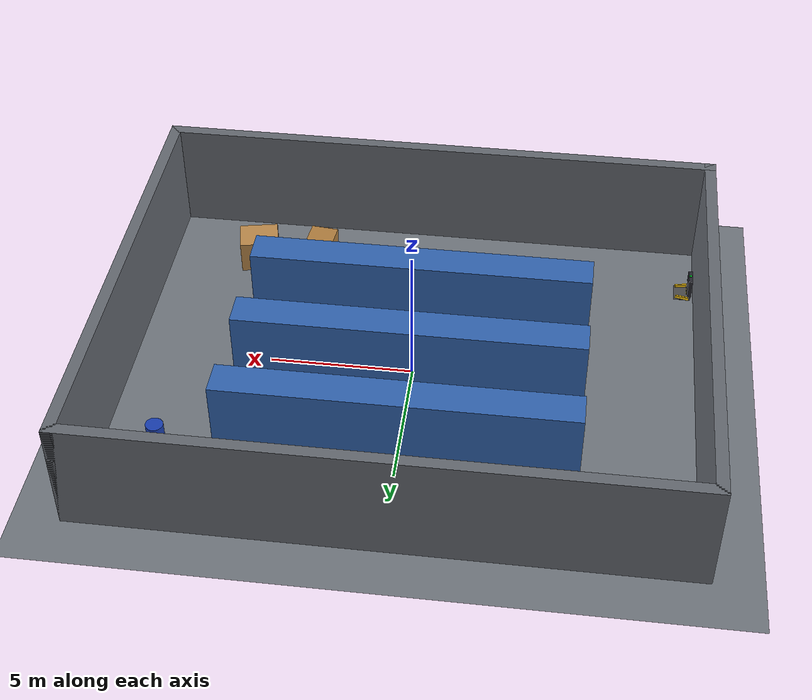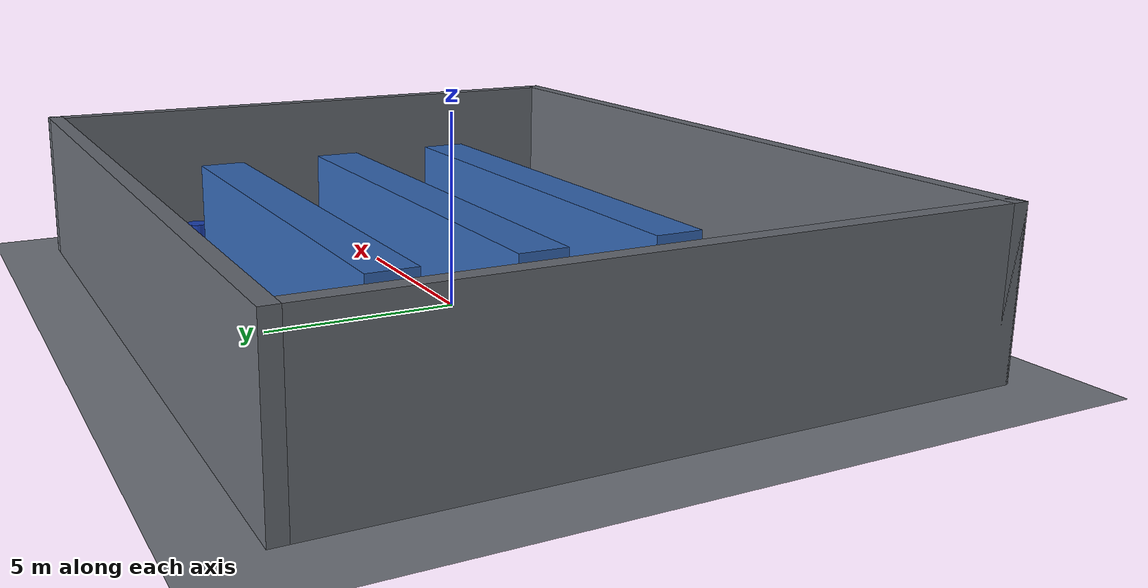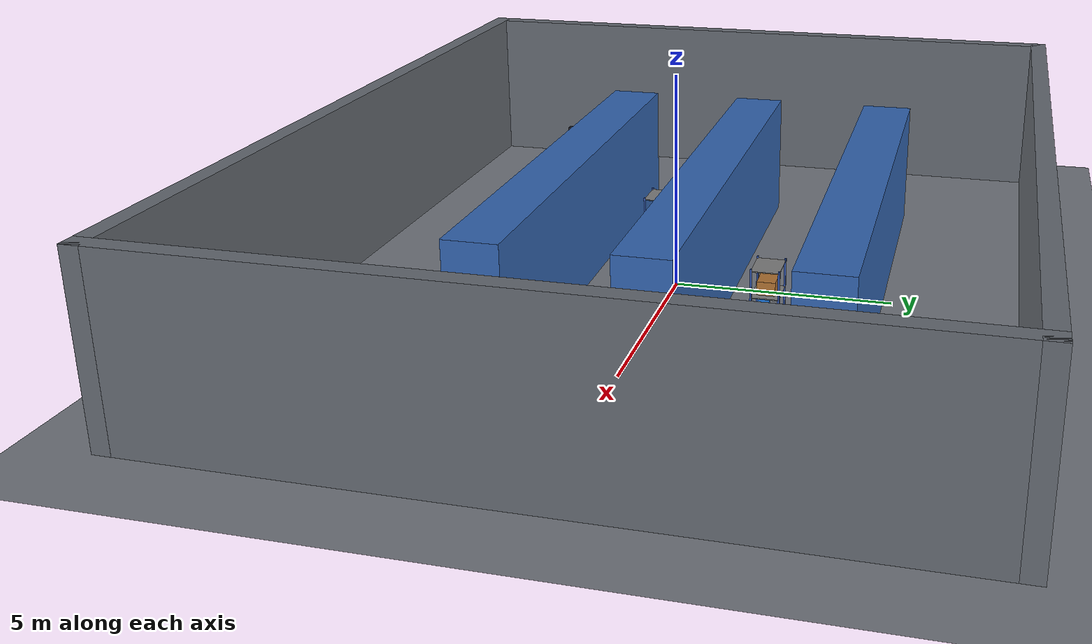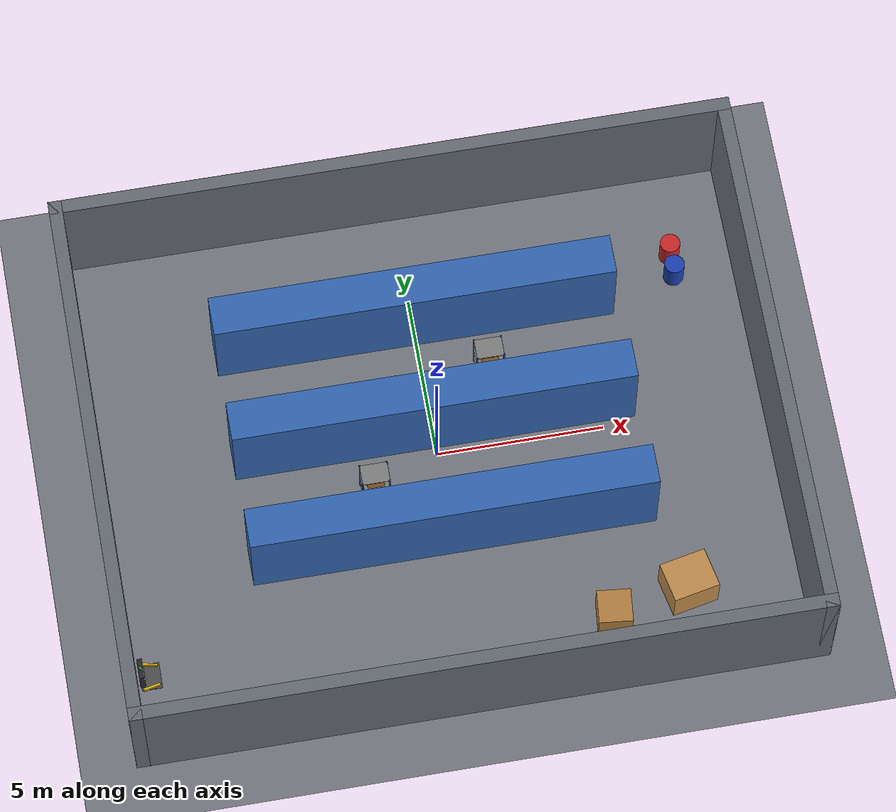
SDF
<?xml version="1.0" ?>
<sdf version="1.6">
  <world name="warehouse_world">

    <!-- Enables /get_entity_state and /set_entity_state (RViz pose → Gazebo) -->
    <plugin name="gazebo_ros_state" filename="libgazebo_ros_state.so">
      <ros>
        <namespace>/</namespace>
      </ros>
      <update_rate>10.0</update_rate>
    </plugin>

    <!-- Physics Engine Configuration -->
    <physics type="ode">
      <max_step_size>0.004</max_step_size>
      <real_time_factor>1.0</real_time_factor>
      <real_time_update_rate>250</real_time_update_rate>
      <ode>
        <solver>
          <type>quick</type>
          <iters>20</iters>
          <sor>1.3</sor>
        </solver>
        <constraints>
          <cfm>0.00001</cfm>
          <erp>0.2</erp>
          <contact_max_correcting_vel>100.0</contact_max_correcting_vel>
          <contact_surface_layer>0.001</contact_surface_layer>
        </constraints>
      </ode>
    </physics>

    <!-- Overhead Ambient Lighting -->
    <scene>
      <ambient>0.6 0.6 0.65 1.0</ambient>
      <background>0.3 0.35 0.4 1.0</background>
      <shadows>false</shadows>
    </scene>

    <!-- Main Directional Sun -->
    <light name="sun" type="directional">
      <cast_shadows>false</cast_shadows>
      <pose>0 0 15 0 0 0</pose>
      <diffuse>0.8 0.8 0.8 1</diffuse>
      <specular>0.2 0.2 0.2 1</specular>
      <attenuation>
        <range>1000</range>
        <constant>0.9</constant>
        <linear>0.01</linear>
        <quadratic>0.001</quadratic>
      </attenuation>
      <direction>-0.3 0.2 -1.0</direction>
    </light>

    <!-- Ground Floor -->
    <model name="ground_plane">
      <static>true</static>
      <link name="link">
        <collision name="collision">
          <geometry><plane><normal>0 0 1</normal><size>40 40</size></plane></geometry>
          <surface><friction><ode><mu>1.0</mu><mu2>1.0</mu2></ode></friction></surface>
        </collision>
        <visual name="visual">
          <geometry><plane><normal>0 0 1</normal><size>40 40</size></plane></geometry>
          <material>
            <ambient>0.4 0.42 0.44 1</ambient>
            <diffuse>0.45 0.47 0.50 1</diffuse>
          </material>
        </visual>
      </link>
    </model>

    <!-- WAREHOUSE BOUNDARY WALLS -->
    <!-- North Wall -->
    <model name="north_wall">
      <static>true</static>
      <link name="link">
        <pose>0 8 2.0 0 0 0</pose>
        <collision name="col"><geometry><box><size>20.4 0.4 4.0</size></box></geometry></collision>
        <visual name="vis">
          <geometry><box><size>20.4 0.4 4.0</size></box></geometry>
          <material><ambient>0.3 0.32 0.35 1</ambient><diffuse>0.4 0.42 0.45 1</diffuse></material>
        </visual>
      </link>
    </model>

    <!-- South Wall -->
    <model name="south_wall">
      <static>true</static>
      <link name="link">
        <pose>0 -8 2.0 0 0 0</pose>
        <collision name="col"><geometry><box><size>20.4 0.4 4.0</size></box></geometry></collision>
        <visual name="vis">
          <geometry><box><size>20.4 0.4 4.0</size></box></geometry>
          <material><ambient>0.3 0.32 0.35 1</ambient><diffuse>0.4 0.42 0.45 1</diffuse></material>
        </visual>
      </link>
    </model>

    <!-- East Wall -->
    <model name="east_wall">
      <static>true</static>
      <link name="link">
        <pose>10 0 2.0 0 0 0</pose>
        <collision name="col"><geometry><box><size>0.4 16.4 4.0</size></box></geometry></collision>
        <visual name="vis">
          <geometry><box><size>0.4 16.4 4.0</size></box></geometry>
          <material><ambient>0.3 0.32 0.35 1</ambient><diffuse>0.4 0.42 0.45 1</diffuse></material>
        </visual>
      </link>
    </model>

    <!-- West Wall -->
    <model name="west_wall">
      <static>true</static>
      <link name="link">
        <pose>-10 0 2.0 0 0 0</pose>
        <collision name="col"><geometry><box><size>0.4 16.4 4.0</size></box></geometry></collision>
        <visual name="vis">
          <geometry><box><size>0.4 16.4 4.0</size></box></geometry>
          <material><ambient>0.3 0.32 0.35 1</ambient><diffuse>0.4 0.42 0.45 1</diffuse></material>
        </visual>
      </link>
    </model>

    <!-- WAREHOUSE PALLET RACK ROWS -->
    <!-- Rack Row 1 (North Aisle Boundary) -->
    <model name="rack_row_1">
      <static>true</static>
      <link name="link">
        <pose>0 4.2 1.5 0 0 0</pose>
        <collision name="col"><geometry><box><size>12.0 1.2 3.0</size></box></geometry></collision>
        <visual name="vis">
          <geometry><box><size>12.0 1.2 3.0</size></box></geometry>
          <material><ambient>0.15 0.3 0.6 1</ambient><diffuse>0.2 0.4 0.7 1</diffuse></material>
        </visual>
      </link>
    </model>

    <!-- Rack Row 2 (Central Separator) -->
    <model name="rack_row_2">
      <static>true</static>
      <link name="link">
        <pose>0 0.8 1.5 0 0 0</pose>
        <collision name="col"><geometry><box><size>12.0 1.2 3.0</size></box></geometry></collision>
        <visual name="vis">
          <geometry><box><size>12.0 1.2 3.0</size></box></geometry>
          <material><ambient>0.15 0.3 0.6 1</ambient><diffuse>0.2 0.4 0.7 1</diffuse></material>
        </visual>
      </link>
    </model>

    <!-- Rack Row 3 (South Aisle Boundary) -->
    <model name="rack_row_3">
      <static>true</static>
      <link name="link">
        <pose>0 -2.6 1.5 0 0 0</pose>
        <collision name="col"><geometry><box><size>12.0 1.2 3.0</size></box></geometry></collision>
        <visual name="vis">
          <geometry><box><size>12.0 1.2 3.0</size></box></geometry>
          <material><ambient>0.15 0.3 0.6 1</ambient><diffuse>0.2 0.4 0.7 1</diffuse></material>
        </visual>
      </link>
    </model>

    <!-- STAGING AREA OBSTACLES & STORAGE BOXES -->
    <!-- Staging Box Stack 1 -->
    <model name="cargo_crate_1">
      <static>true</static>
      <link name="link">
        <pose>6.5 -5.5 0.6 0 0 0.2</pose>
        <collision name="col"><geometry><box><size>1.4 1.2 1.2</size></box></geometry></collision>
        <visual name="vis">
          <geometry><box><size>1.4 1.2 1.2</size></box></geometry>
          <material><ambient>0.7 0.5 0.25 1</ambient><diffuse>0.75 0.55 0.3 1</diffuse></material>
        </visual>
      </link>
    </model>

    <!-- Staging Box Stack 2 -->
    <model name="cargo_crate_2">
      <static>true</static>
      <link name="link">
        <pose>4.2 -6.0 0.5 0 0 -0.1</pose>
        <collision name="col"><geometry><box><size>1.0 1.0 1.0</size></box></geometry></collision>
        <visual name="vis">
          <geometry><box><size>1.0 1.0 1.0</size></box></geometry>
          <material><ambient>0.65 0.45 0.2 1</ambient><diffuse>0.7 0.5 0.25 1</diffuse></material>
        </visual>
      </link>
    </model>

    <!-- Storage Barrels / Drums (Inspection target for vision camera) -->
    <model name="barrel_group">
      <static>true</static>
      <link name="b1">
        <pose>8.0 4.5 0.45 0 0 0</pose>
        <collision name="col"><geometry><cylinder><radius>0.3</radius><length>0.9</length></cylinder></geometry></collision>
        <visual name="vis">
          <geometry><cylinder><radius>0.3</radius><length>0.9</length></cylinder></geometry>
          <material><ambient>0.1 0.2 0.6 1</ambient><diffuse>0.1 0.25 0.7 1</diffuse></material>
        </visual>
      </link>
      <link name="b2">
        <pose>8.0 5.2 0.45 0 0 0</pose>
        <collision name="col"><geometry><cylinder><radius>0.3</radius><length>0.9</length></cylinder></geometry></collision>
        <visual name="vis">
          <geometry><cylinder><radius>0.3</radius><length>0.9</length></cylinder></geometry>
          <material><ambient>0.7 0.1 0.1 1</ambient><diffuse>0.8 0.15 0.15 1</diffuse></material>
        </visual>
      </link>
    </model>

    <!-- AUTO-DOCKING & CHARGING STATION -->
    <!-- Positioned at x=-9.6, y=-5.5, facing East towards the charging corridor -->
    <include>
      <name>amr_charging_dock</name>
      <uri>model://charging_dock</uri>
      <pose>-9.6 -5.5 0 0 0 0</pose>
    </include>

    <!-- MOVABLE SHELF PODS FOR AMR LIFT TRANSPORT -->
    <!-- Shelf Pod 1 located in Aisle 1 (North corridor) -->
    <include>
      <name>warehouse_shelf_1</name>
      <uri>model://warehouse_shelf</uri>
      <pose>2.0 2.5 0 0 0 0</pose>
    </include>

    <!-- Shelf Pod 2 located in Aisle 2 (South corridor) -->
    <include>
      <name>warehouse_shelf_2</name>
      <uri>model://warehouse_shelf</uri>
      <pose>-2.0 -0.9 0 0 0 0</pose>
    </include>

  </world>
</sdf>

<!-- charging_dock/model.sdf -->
<sdf version="1.6">
  <model name="charging_dock">
    <static>true</static>
    <link name="dock_link">
      <!-- Base Floor Plate -->
      <visual name="base_plate_vis">
        <pose>0.2 0 0.005 0 0 0</pose>
        <geometry>
          <box><size>0.6 0.8 0.01</size></box>
        </geometry>
        <material>
          <ambient>0.2 0.2 0.2 1</ambient>
          <diffuse>0.3 0.3 0.3 1</diffuse>
        </material>
      </visual>

      <!-- Main Back Wall Column -->
      <visual name="column_vis">
        <pose>-0.05 0 0.4 0 0 0</pose>
        <geometry>
          <box><size>0.15 0.6 0.8</size></box>
        </geometry>
        <material>
          <ambient>0.1 0.1 0.12 1</ambient>
          <diffuse>0.15 0.15 0.18 1</diffuse>
        </material>
      </visual>
      <collision name="column_col">
        <pose>-0.05 0 0.4 0 0 0</pose>
        <geometry>
          <box><size>0.15 0.6 0.8</size></box>
        </geometry>
      </collision>

      <!-- Left Wheel Guide Funnel (Angled) -->
      <visual name="left_funnel_vis">
        <pose>0.2 0.35 0.06 0 0 -0.2</pose>
        <geometry>
          <box><size>0.5 0.06 0.12</size></box>
        </geometry>
        <material>
          <ambient>0.9 0.7 0.0 1</ambient>
          <diffuse>0.95 0.75 0.05 1</diffuse>
        </material>
      </visual>
      <collision name="left_funnel_col">
        <pose>0.2 0.35 0.06 0 0 -0.2</pose>
        <geometry>
          <box><size>0.5 0.06 0.12</size></box>
        </geometry>
      </collision>

      <!-- Right Wheel Guide Funnel (Angled) -->
      <visual name="right_funnel_vis">
        <pose>0.2 -0.35 0.06 0 0 0.2</pose>
        <geometry>
          <box><size>0.5 0.06 0.12</size></box>
        </geometry>
        <material>
          <ambient>0.9 0.7 0.0 1</ambient>
          <diffuse>0.95 0.75 0.05 1</diffuse>
        </material>
      </visual>
      <collision name="right_funnel_col">
        <pose>0.2 -0.35 0.06 0 0 0.2</pose>
        <geometry>
          <box><size>0.5 0.06 0.12</size></box>
        </geometry>
      </collision>

      <!-- Charging Terminals (Spring contacts) -->
      <visual name="charge_terminal_left_vis">
        <pose>0.03 0.10 0.10 0 0 0</pose>
        <geometry>
          <box><size>0.04 0.06 0.05</size></box>
        </geometry>
        <material>
          <ambient>0.9 0.8 0.1 1</ambient>
          <diffuse>0.95 0.85 0.2 1</diffuse>
        </material>
      </visual>
      <visual name="charge_terminal_right_vis">
        <pose>0.03 -0.10 0.10 0 0 0</pose>
        <geometry>
          <box><size>0.04 0.06 0.05</size></box>
        </geometry>
        <material>
          <ambient>0.9 0.8 0.1 1</ambient>
          <diffuse>0.95 0.85 0.2 1</diffuse>
        </material>
      </visual>

      <!-- Visual Fiducial / Marker Target Panel for Camera Recognition -->
      <visual name="fiducial_panel_vis">
        <pose>0.03 0 0.35 0 0 0</pose>
        <geometry>
          <box><size>0.01 0.25 0.25</size></box>
        </geometry>
        <material>
          <ambient>1 1 1 1</ambient>
          <diffuse>1 1 1 1</diffuse>
        </material>
      </visual>
      <!-- Visual Fiducial Black Center Square (ArUco / Tag pattern) -->
      <visual name="fiducial_marker_vis">
        <pose>0.036 0 0.35 0 0 0</pose>
        <geometry>
          <box><size>0.005 0.16 0.16</size></box>
        </geometry>
        <material>
          <ambient>0 0 0 1</ambient>
          <diffuse>0 0 0 1</diffuse>
        </material>
      </visual>

      <!-- Status Indicator Light (Green / Blue Glow) -->
      <visual name="status_light_vis">
        <pose>-0.05 0 0.82 0 0 0</pose>
        <geometry>
          <cylinder><radius>0.04</radius><length>0.05</length></cylinder>
        </geometry>
        <material>
          <ambient>0 1 0.2 1</ambient>
          <diffuse>0 1 0.2 1</diffuse>
          <emissive>0 0.8 0.2 1</emissive>
        </material>
      </visual>
    </link>
  </model>
</sdf>

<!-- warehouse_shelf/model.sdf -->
<sdf version="1.6">
  <model name="warehouse_shelf">
    <static>false</static>
    <link name="shelf_link">
      <inertial>
        <pose>0 0 0.7 0 0 0</pose>
        <mass>18.0</mass>
        <inertia>
          <ixx>4.2</ixx><ixy>0</ixy><ixz>0</ixz>
          <iyy>4.5</iyy><iyz>0</iyz>
          <izz>1.5</izz>
        </inertia>
      </inertial>

      <!-- 4 Corner Legs -->
      <!-- Front-Left Leg -->
      <visual name="leg_fl_vis">
        <pose>0.40 0.30 0.75 0 0 0</pose>
        <geometry><box><size>0.04 0.04 1.5</size></box></geometry>
        <material><ambient>0.2 0.3 0.6 1</ambient><diffuse>0.2 0.35 0.7 1</diffuse></material>
      </visual>
      <collision name="leg_fl_col">
        <pose>0.40 0.30 0.75 0 0 0</pose>
        <geometry><box><size>0.04 0.04 1.5</size></box></geometry>
      </collision>

      <!-- Front-Right Leg -->
      <visual name="leg_fr_vis">
        <pose>0.40 -0.30 0.75 0 0 0</pose>
        <geometry><box><size>0.04 0.04 1.5</size></box></geometry>
        <material><ambient>0.2 0.3 0.6 1</ambient><diffuse>0.2 0.35 0.7 1</diffuse></material>
      </visual>
      <collision name="leg_fr_col">
        <pose>0.40 -0.30 0.75 0 0 0</pose>
        <geometry><box><size>0.04 0.04 1.5</size></box></geometry>
      </collision>

      <!-- Rear-Left Leg -->
      <visual name="leg_rl_vis">
        <pose>-0.40 0.30 0.75 0 0 0</pose>
        <geometry><box><size>0.04 0.04 1.5</size></box></geometry>
        <material><ambient>0.2 0.3 0.6 1</ambient><diffuse>0.2 0.35 0.7 1</diffuse></material>
      </visual>
      <collision name="leg_rl_col">
        <pose>-0.40 0.30 0.75 0 0 0</pose>
        <geometry><box><size>0.04 0.04 1.5</size></box></geometry>
      </collision>

      <!-- Rear-Right Leg -->
      <visual name="leg_rr_vis">
        <pose>-0.40 -0.30 0.75 0 0 0</pose>
        <geometry><box><size>0.04 0.04 1.5</size></box></geometry>
        <material><ambient>0.2 0.3 0.6 1</ambient><diffuse>0.2 0.35 0.7 1</diffuse></material>
      </visual>
      <collision name="leg_rr_col">
        <pose>-0.40 -0.30 0.75 0 0 0</pose>
        <geometry><box><size>0.04 0.04 1.5</size></box></geometry>
      </collision>

      <!-- Lift Contact Deck (Underside engages with robot lift plate at z=0.27m) -->
      <visual name="lift_deck_vis">
        <pose>0 0 0.275 0 0 0</pose>
        <geometry><box><size>0.82 0.62 0.02</size></box></geometry>
        <material><ambient>0.4 0.4 0.4 1</ambient><diffuse>0.5 0.5 0.5 1</diffuse></material>
      </visual>
      <collision name="lift_deck_col">
        <pose>0 0 0.275 0 0 0</pose>
        <geometry><box><size>0.82 0.62 0.02</size></box></geometry>
        <surface>
          <friction>
            <ode><mu>1.5</mu><mu2>1.5</mu2></ode>
          </friction>
        </surface>
      </collision>

      <!-- Middle Shelf Tier -->
      <visual name="mid_shelf_vis">
        <pose>0 0 0.85 0 0 0</pose>
        <geometry><box><size>0.82 0.62 0.02</size></box></geometry>
        <material><ambient>0.4 0.4 0.4 1</ambient><diffuse>0.5 0.5 0.5 1</diffuse></material>
      </visual>
      <collision name="mid_shelf_col">
        <pose>0 0 0.85 0 0 0</pose>
        <geometry><box><size>0.82 0.62 0.02</size></box></geometry>
      </collision>

      <!-- Top Shelf Tier -->
      <visual name="top_shelf_vis">
        <pose>0 0 1.45 0 0 0</pose>
        <geometry><box><size>0.82 0.62 0.02</size></box></geometry>
        <material><ambient>0.4 0.4 0.4 1</ambient><diffuse>0.5 0.5 0.5 1</diffuse></material>
      </visual>
      <collision name="top_shelf_col">
        <pose>0 0 1.45 0 0 0</pose>
        <geometry><box><size>0.82 0.62 0.02</size></box></geometry>
      </collision>

      <!-- Storage Totes/Boxes on Shelves (Visual elements) -->
      <visual name="box1_vis">
        <pose>0.15 0.12 0.42 0 0 0</pose>
        <geometry><box><size>0.3 0.25 0.25</size></box></geometry>
        <material><ambient>0.8 0.5 0.2 1</ambient><diffuse>0.7 0.45 0.2 1</diffuse></material>
      </visual>
      <visual name="box2_vis">
        <pose>-0.15 -0.12 0.42 0 0 0</pose>
        <geometry><box><size>0.3 0.25 0.25</size></box></geometry>
        <material><ambient>0.1 0.4 0.8 1</ambient><diffuse>0.1 0.45 0.85 1</diffuse></material>
      </visual>
      <visual name="box3_vis">
        <pose>0 0 1.02 0 0 0</pose>
        <geometry><box><size>0.5 0.4 0.3</size></box></geometry>
        <material><ambient>0.8 0.5 0.2 1</ambient><diffuse>0.7 0.45 0.2 1</diffuse></material>
      </visual>
    </link>
  </model>
</sdf>
